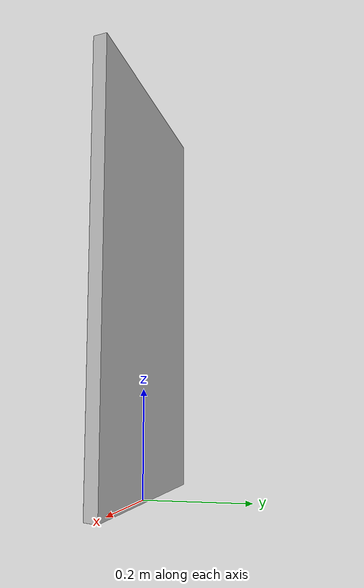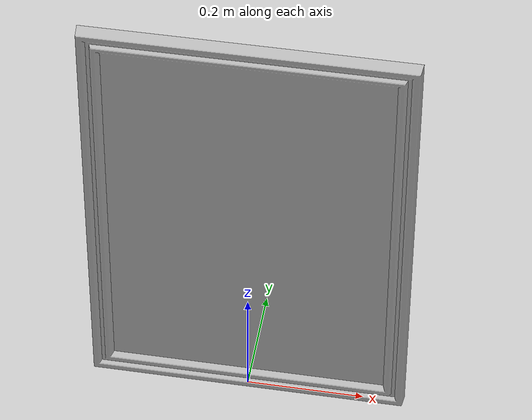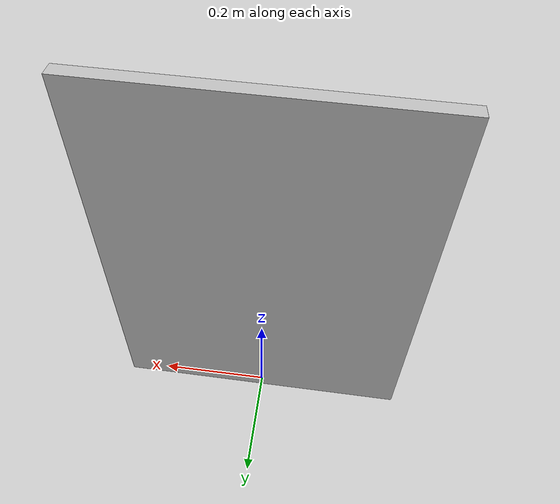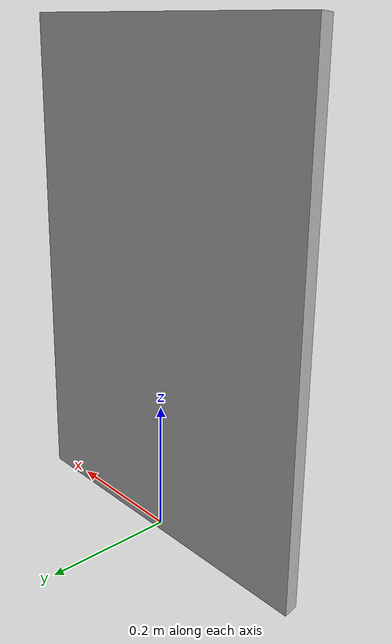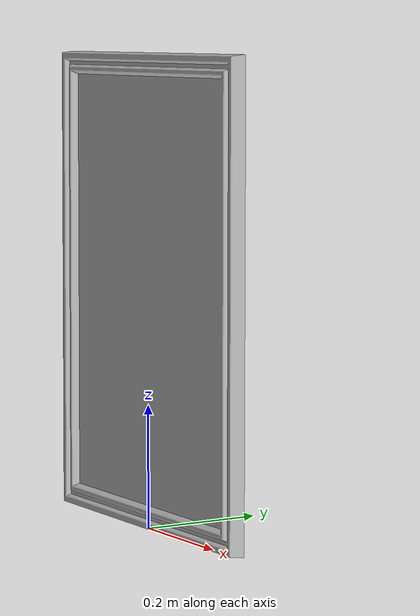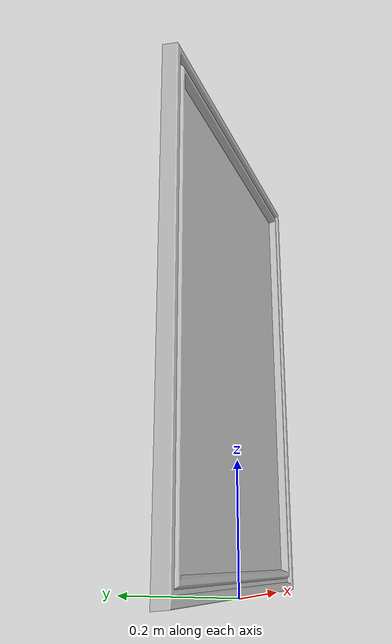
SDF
<?xml version="1.0" ?>
<sdf version="1.8">
  <model name="aws_robomaker_residential_PortraitE_01">
    <link name="link">
      <inertial>
        <mass>1</mass>
        <inertia>
          <ixx>  5.2859181793e-02 </ixx>
          <ixy>  4.0193623835e-10 </ixy>
          <ixz> -1.4222495617e-11 </ixz>
          <iyy>  2.7393923094e-02 </iyy>
          <iyz> -7.7871000909e-09 </iyz>
          <izz>  8.0201832081e-02 </izz>
        </inertia>
      </inertial>
      <collision name="collision">
        <geometry>
          <mesh>
            <uri>model://aws_robomaker_residential_PortraitE_01/meshes/aws_PortraitE_01_collision.DAE</uri>
            <scale>1 1 1</scale>
          </mesh>
        </geometry>
      </collision>
      <visual name="visual">
	      <geometry>
          <mesh>
            <uri>model://aws_robomaker_residential_PortraitE_01/meshes/aws_PortraitE_01_visual.DAE</uri>
          </mesh>
        </geometry>
      <meta> <layer> 2 </layer></meta>
      </visual>
    </link>
	  <static>1</static>
  </model>
</sdf>
